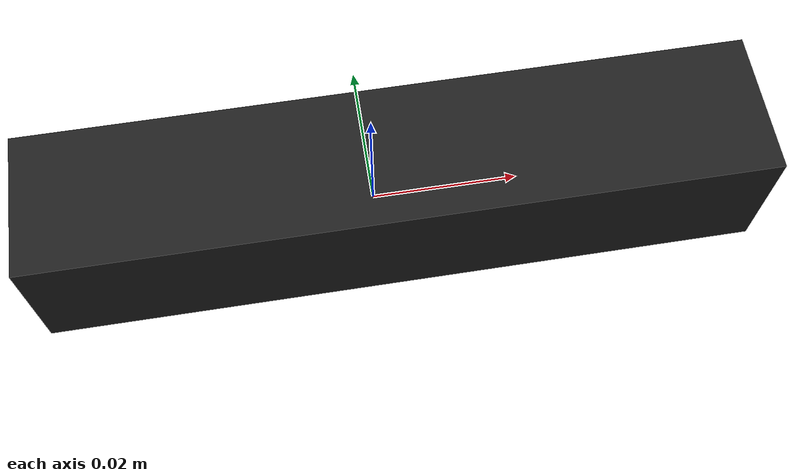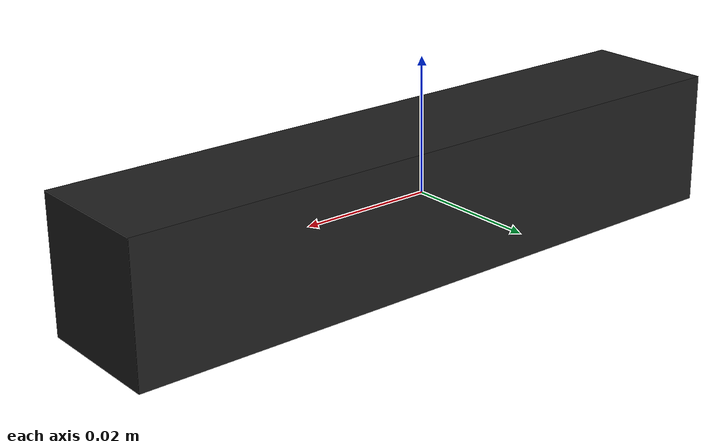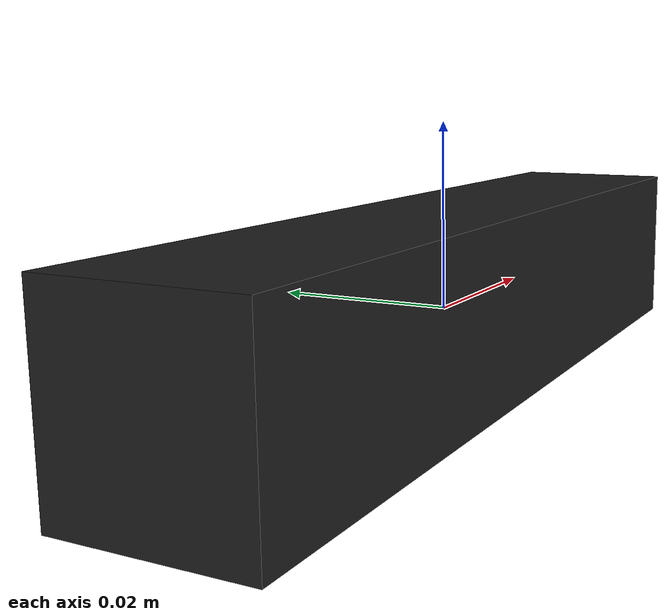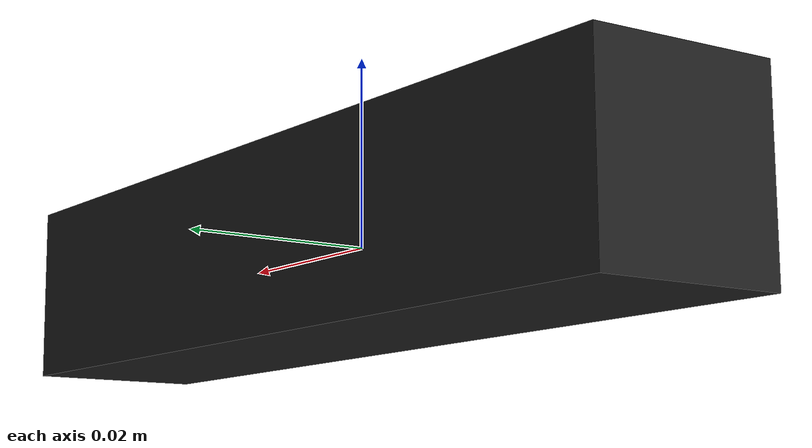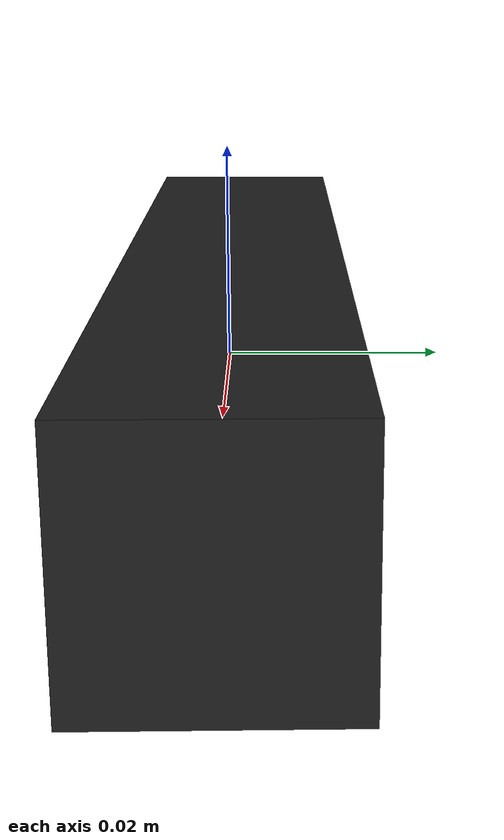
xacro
<?xml version="1.0"?>
<robot name="alu_profil_f20_black" xmlns:xacro="http://ros.org/wiki/xacro">

	<include filename="$(find raw_gazebo_objects)/common/templates/box.urdf.xacro" />

	<xacro:box_template name="alu_profil_f20_black" length="0.1" width="0.02" height="0.02" color="Gazebo/Black" />

</robot>

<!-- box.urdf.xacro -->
<robot name="box_template" xmlns:xacro="http://ros.org/wiki/xacro">

	<xacro:macro name="box_template" params="name length width height color">
		<link name="${name}_link">
			<inertial>
				<origin xyz="${length / 32} ${width / 32} ${height / 32}" rpy="0 0 0" />
				<mass value="10.0" />
			    <inertia  ixx="1.0" ixy="0.0"  ixz="0.0"  iyy="1.0"  iyz="0.0"  izz="1.0" />
			</inertial>

			<visual>
				<origin xyz="${length / 32} ${width / 32} ${height / 32}" rpy="0 0 0" />
				<geometry>
					<box size="${length} ${width} ${height}" />
				</geometry>
			</visual>

			<collision>
				<origin xyz="${length / 32} ${width / 32} ${height / 32}" rpy="0 0 0" />
				<geometry>
			   		<box size="${length} ${width} ${height}" />
				</geometry>
			</collision >
		</link>

		<gazebo reference="${name}_link">
			<material>${color}</material>
			<selfCollide>true</selfCollide>
		</gazebo>

	</xacro:macro>
</robot>
